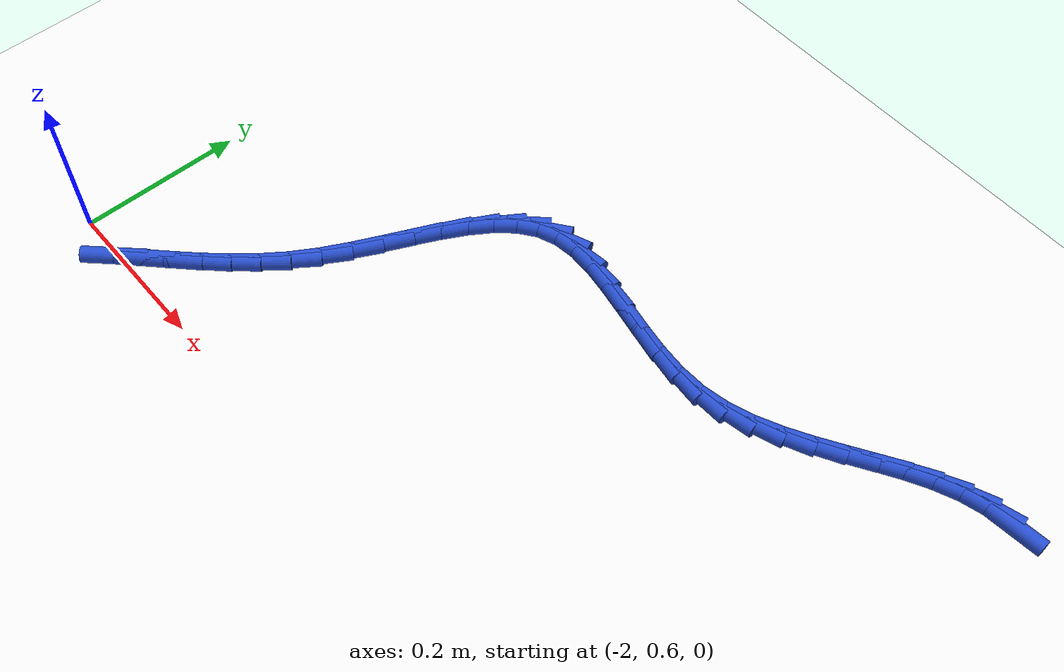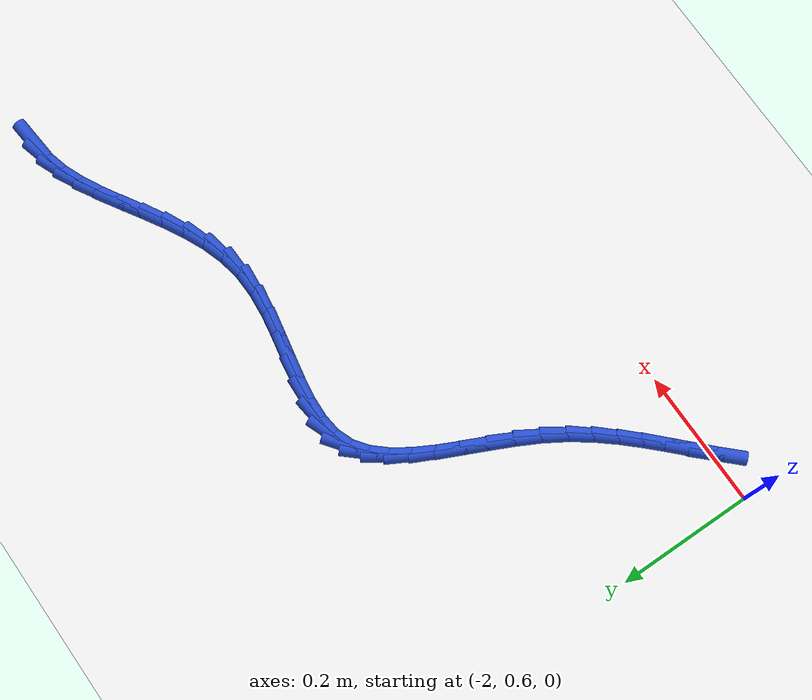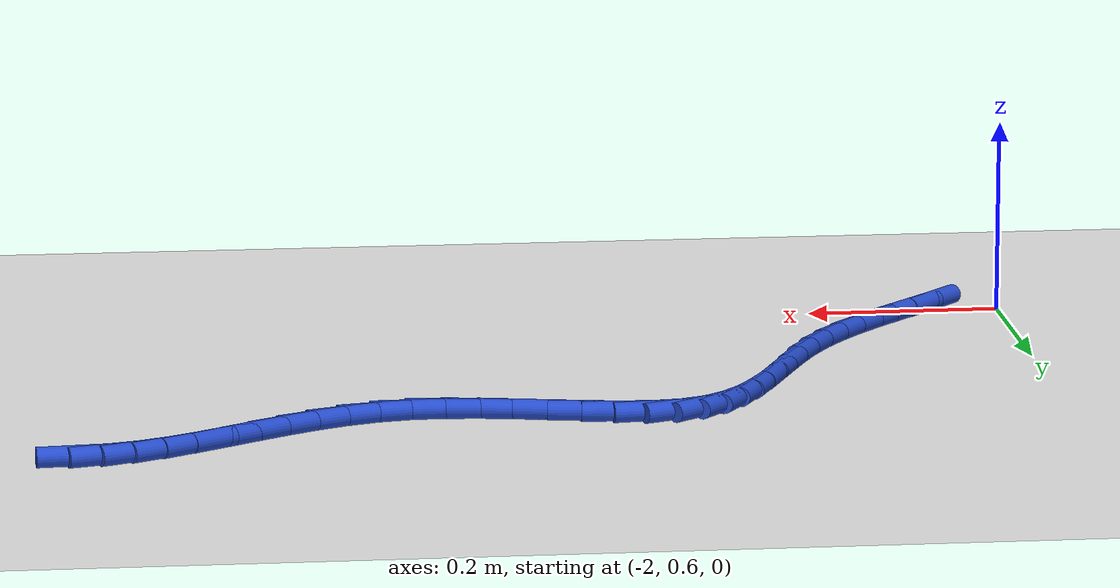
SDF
<sdf version="1.6">
 <world name="default">
  <model name="ground_plane">
   <static>1</static>
   <link name="link">
    <collision name="collision">
     <geometry><plane><normal>0 0 1</normal><size>100 100</size></plane></geometry>
     <surface><friction><ode><mu>100</mu><mu2>50</mu2></ode></friction></surface>
    </collision>
    <visual name="visual">
     <cast_shadows>0</cast_shadows>
     <geometry><plane><normal>0 0 1</normal><size>100 100</size></plane></geometry>
     <material>
      <script><uri>file://media/materials/scripts/gazebo.material</uri><name>Gazebo/WhiteGlow</name></script>
     </material>
    </visual>
   </link>
  </model>
  <model name="line">
   <link name="link_52">
    <pose>-1.0259777532652572 1.1201565455680154 0.01 0 1.57 0.08611893550251531</pose>
    <collision name="collision">
     <geometry><cylinder><radius>0.01</radius><length>0.08</length></cylinder></geometry>
    </collision>
    <visual name="visual">
     <material>
      <script><name>Gazebo/Blue</name><uri>file://media/materials/scripts/gazebo.material</uri></script>
     </material>
     <geometry><cylinder><radius>0.01</radius><length>0.08</length></cylinder></geometry>
    </visual>
   </link>
   <link name="link_53">
    <pose>-1.0549552922446777 1.1176548430962816 0.01 0 1.57 0.26071290076999276</pose>
    <collision name="collision">
     <geometry><cylinder><radius>0.01</radius><length>0.08</length></cylinder></geometry>
    </collision>
    <visual name="visual">
     <material>
      <script><name>Gazebo/Blue</name><uri>file://media/materials/scripts/gazebo.material</uri></script>
     </material>
     <geometry><cylinder><radius>0.01</radius><length>0.08</length></cylinder></geometry>
    </visual>
   </link>
   <link name="link_54">
    <pose>-1.083548175945985 1.1100266895430082 0.01 0 1.57 0.3939593451245669</pose>
    <collision name="collision">
     <geometry><cylinder><radius>0.01</radius><length>0.08</length></cylinder></geometry>
    </collision>
    <visual name="visual">
     <material>
      <script><name>Gazebo/Blue</name><uri>file://media/materials/scripts/gazebo.material</uri></script>
     </material>
     <geometry><cylinder><radius>0.01</radius><length>0.08</length></cylinder></geometry>
    </visual>
   </link>
   <link name="link_55">
    <pose>-1.111916370697673 1.0982342912697711 0.01 0 1.57 0.4836126055615789</pose>
    <collision name="collision">
     <geometry><cylinder><radius>0.01</radius><length>0.08</length></cylinder></geometry>
    </collision>
    <visual name="visual">
     <material>
      <script><name>Gazebo/Blue</name><uri>file://media/materials/scripts/gazebo.material</uri></script>
     </material>
     <geometry><cylinder><radius>0.01</radius><length>0.08</length></cylinder></geometry>
    </visual>
   </link>
   <link name="link_56">
    <pose>-1.140232149649637 1.083362525131302 0.01 0 1.57 0.5353586523979912</pose>
    <collision name="collision">
     <geometry><cylinder><radius>0.01</radius><length>0.08</length></cylinder></geometry>
    </collision>
    <visual name="visual">
     <material>
      <script><name>Gazebo/Blue</name><uri>file://media/materials/scripts/gazebo.material</uri></script>
     </material>
     <geometry><cylinder><radius>0.01</radius><length>0.08</length></cylinder></geometry>
    </visual>
   </link>
   <link name="link_57">
    <pose>-1.1686677859517722 1.0664962679823315 0.01 0 1.57 0.5541065408203324</pose>
    <collision name="collision">
     <geometry><cylinder><radius>0.01</radius><length>0.08</length></cylinder></geometry>
    </collision>
    <visual name="visual">
     <material>
      <script><name>Gazebo/Blue</name><uri>file://media/materials/scripts/gazebo.material</uri></script>
     </material>
     <geometry><cylinder><radius>0.01</radius><length>0.08</length></cylinder></geometry>
    </visual>
   </link>
   <link name="link_58">
    <pose>-1.1973955527539744 1.0487203966775922 0.01 0 1.57 0.5425654313970443</pose>
    <collision name="collision">
     <geometry><cylinder><radius>0.01</radius><length>0.08</length></cylinder></geometry>
    </collision>
    <visual name="visual">
     <material>
      <script><name>Gazebo/Blue</name><uri>file://media/materials/scripts/gazebo.material</uri></script>
     </material>
     <geometry><cylinder><radius>0.01</radius><length>0.08</length></cylinder></geometry>
    </visual>
   </link>
   <link name="link_59">
    <pose>-1.2265877232061388 1.0311197880718144 0.01 0 1.57 0.501158423794729</pose>
    <collision name="collision">
     <geometry><cylinder><radius>0.01</radius><length>0.08</length></cylinder></geometry>
    </collision>
    <visual name="visual">
     <material>
      <script><name>Gazebo/Blue</name><uri>file://media/materials/scripts/gazebo.material</uri></script>
     </material>
     <geometry><cylinder><radius>0.01</radius><length>0.08</length></cylinder></geometry>
    </visual>
   </link>
   <link name="link_60">
    <pose>-1.2564165704581611 1.0147793190197296 0.01 0 1.57 0.4284972848036005</pose>
    <collision name="collision">
     <geometry><cylinder><radius>0.01</radius><length>0.08</length></cylinder></geometry>
    </collision>
    <visual name="visual">
     <material>
      <script><name>Gazebo/Blue</name><uri>file://media/materials/scripts/gazebo.material</uri></script>
     </material>
     <geometry><cylinder><radius>0.01</radius><length>0.08</length></cylinder></geometry>
    </visual>
   </link>
   <link name="link_61">
    <pose>-1.2870543676599366 1.00078386637607 0.01 0 1.57 0.3224871878234295</pose>
    <collision name="collision">
     <geometry><cylinder><radius>0.01</radius><length>0.08</length></cylinder></geometry>
    </collision>
    <visual name="visual">
     <material>
      <script><name>Gazebo/Blue</name><uri>file://media/materials/scripts/gazebo.material</uri></script>
     </material>
     <geometry><cylinder><radius>0.01</radius><length>0.08</length></cylinder></geometry>
    </visual>
   </link>
   <link name="link_62">
    <pose>-1.3186733879613601 0.9902183069955662 0.01 0 1.57 0.1825742327631853</pose>
    <collision name="collision">
     <geometry><cylinder><radius>0.01</radius><length>0.08</length></cylinder></geometry>
    </collision>
    <visual name="visual">
     <material>
      <script><name>Gazebo/Blue</name><uri>file://media/materials/scripts/gazebo.material</uri></script>
     </material>
     <geometry><cylinder><radius>0.01</radius><length>0.08</length></cylinder></geometry>
    </visual>
   </link>
   <link name="link_63">
    <pose>-1.3514459021469807 0.9841675093646113 0.01 0 1.57 0.02684532839024324</pose>
    <collision name="collision">
     <geometry><cylinder><radius>0.01</radius><length>0.08</length></cylinder></geometry>
    </collision>
    <visual name="visual">
     <material>
      <script><name>Gazebo/Blue</name><uri>file://media/materials/scripts/gazebo.material</uri></script>
     </material>
     <geometry><cylinder><radius>0.01</radius><length>0.08</length></cylinder></geometry>
    </visual>
   </link>
   <link name="link_64">
    <pose>-1.3854138960708653 0.983255408293976 0.01 0 1.57 -0.09046818717673741</pose>
    <collision name="collision">
     <geometry><cylinder><radius>0.01</radius><length>0.08</length></cylinder></geometry>
    </collision>
    <visual name="visual">
     <material>
      <script><name>Gazebo/Blue</name><uri>file://media/materials/scripts/gazebo.material</uri></script>
     </material>
     <geometry><cylinder><radius>0.01</radius><length>0.08</length></cylinder></geometry>
    </visual>
   </link>
   <link name="link_65">
    <pose>-1.420138718775987 0.9864054987111578 0.01 0 1.57 -0.16296738304080768</pose>
    <collision name="collision">
     <geometry><cylinder><radius>0.01</radius><length>0.08</length></cylinder></geometry>
    </collision>
    <visual name="visual">
     <material>
      <script><name>Gazebo/Blue</name><uri>file://media/materials/scripts/gazebo.material</uri></script>
     </material>
     <geometry><cylinder><radius>0.01</radius><length>0.08</length></cylinder></geometry>
    </visual>
   </link>
   <link name="link_66">
    <pose>-1.4550709101351507 0.9921492449541518 0.01 0 1.57 -0.19602881218156004</pose>
    <collision name="collision">
     <geometry><cylinder><radius>0.01</radius><length>0.08</length></cylinder></geometry>
    </collision>
    <visual name="visual">
     <material>
      <script><name>Gazebo/Blue</name><uri>file://media/materials/scripts/gazebo.material</uri></script>
     </material>
     <geometry><cylinder><radius>0.01</radius><length>0.08</length></cylinder></geometry>
    </visual>
   </link>
   <link name="link_67">
    <pose>-1.4896610100211571 0.9990181113609515 0.01 0 1.57 -0.19127459408507944</pose>
    <collision name="collision">
     <geometry><cylinder><radius>0.01</radius><length>0.08</length></cylinder></geometry>
    </collision>
    <visual name="visual">
     <material>
      <script><name>Gazebo/Blue</name><uri>file://media/materials/scripts/gazebo.material</uri></script>
     </material>
     <geometry><cylinder><radius>0.01</radius><length>0.08</length></cylinder></geometry>
    </visual>
   </link>
   <link name="link_68">
    <pose>-1.52335955830681 1.0055435622695512 0.01 0 1.57 -0.14509404896703468</pose>
    <collision name="collision">
     <geometry><cylinder><radius>0.01</radius><length>0.08</length></cylinder></geometry>
    </collision>
    <visual name="visual">
     <material>
      <script><name>Gazebo/Blue</name><uri>file://media/materials/scripts/gazebo.material</uri></script>
     </material>
     <geometry><cylinder><radius>0.01</radius><length>0.08</length></cylinder></geometry>
    </visual>
   </link>
   <link name="link_69">
    <pose>-1.5556170948649124 1.010257062017945 0.01 0 1.57 -0.04731029014906379</pose>
    <collision name="collision">
     <geometry><cylinder><radius>0.01</radius><length>0.08</length></cylinder></geometry>
    </collision>
    <visual name="visual">
     <material>
      <script><name>Gazebo/Blue</name><uri>file://media/materials/scripts/gazebo.material</uri></script>
     </material>
     <geometry><cylinder><radius>0.01</radius><length>0.08</length></cylinder></geometry>
    </visual>
   </link>
   <link name="link_70">
    <pose>-1.5858841595682664 1.0116900749441267 0.01 0 1.57 0.11902905592434371</pose>
    <collision name="collision">
     <geometry><cylinder><radius>0.01</radius><length>0.08</length></cylinder></geometry>
    </collision>
    <visual name="visual">
     <material>
      <script><name>Gazebo/Blue</name><uri>file://media/materials/scripts/gazebo.material</uri></script>
     </material>
     <geometry><cylinder><radius>0.01</radius><length>0.08</length></cylinder></geometry>
    </visual>
   </link>
   <link name="link_71">
    <pose>-1.6136112922896761 1.0083740653860909 0.01 0 1.57 0.3674107815482375</pose>
    <collision name="collision">
     <geometry><cylinder><radius>0.01</radius><length>0.08</length></cylinder></geometry>
    </collision>
    <visual name="visual">
     <material>
      <script><name>Gazebo/Blue</name><uri>file://media/materials/scripts/gazebo.material</uri></script>
     </material>
     <geometry><cylinder><radius>0.01</radius><length>0.08</length></cylinder></geometry>
    </visual>
   </link>
   <link name="link_72">
    <pose>-1.6382690138259495 0.9988836188424973 0.01 0 1.57 0.6358802959516996</pose>
    <collision name="collision">
     <geometry><cylinder><radius>0.01</radius><length>0.08</length></cylinder></geometry>
    </collision>
    <visual name="visual">
     <material>
      <script><name>Gazebo/Blue</name><uri>file://media/materials/scripts/gazebo.material</uri></script>
     </material>
     <geometry><cylinder><radius>0.01</radius><length>0.08</length></cylinder></geometry>
    </visual>
   </link>
   <link name="link_73">
    <pose>-1.6598614656077455 0.9829449362768021 0.01 0 1.57 0.8421692727875335</pose>
    <collision name="collision">
     <geometry><cylinder><radius>0.01</radius><length>0.08</length></cylinder></geometry>
    </collision>
    <visual name="visual">
     <material>
      <script><name>Gazebo/Blue</name><uri>file://media/materials/scripts/gazebo.material</uri></script>
     </material>
     <geometry><cylinder><radius>0.01</radius><length>0.08</length></cylinder></geometry>
    </visual>
   </link>
   <link name="link_74">
    <pose>-1.6789711164593724 0.961532316510751 0.01 0 1.57 0.9826582650933804</pose>
    <collision name="collision">
     <geometry><cylinder><radius>0.01</radius><length>0.08</length></cylinder></geometry>
    </collision>
    <visual name="visual">
     <material>
      <script><name>Gazebo/Blue</name><uri>file://media/materials/scripts/gazebo.material</uri></script>
     </material>
     <geometry><cylinder><radius>0.01</radius><length>0.08</length></cylinder></geometry>
    </visual>
   </link>
   <link name="link_75">
    <pose>-1.6962093756284415 0.9356825151695124 0.01 0 1.57 1.070827798326646</pose>
    <collision name="collision">
     <geometry><cylinder><radius>0.01</radius><length>0.08</length></cylinder></geometry>
    </collision>
    <visual name="visual">
     <material>
      <script><name>Gazebo/Blue</name><uri>file://media/materials/scripts/gazebo.material</uri></script>
     </material>
     <geometry><cylinder><radius>0.01</radius><length>0.08</length></cylinder></geometry>
    </visual>
   </link>
   <link name="link_76">
    <pose>-1.712187652362564 0.906432287878255 0.01 0 1.57 1.1192983352306827</pose>
    <collision name="collision">
     <geometry><cylinder><radius>0.01</radius><length>0.08</length></cylinder></geometry>
    </collision>
    <visual name="visual">
     <material>
      <script><name>Gazebo/Blue</name><uri>file://media/materials/scripts/gazebo.material</uri></script>
     </material>
     <geometry><cylinder><radius>0.01</radius><length>0.08</length></cylinder></geometry>
    </visual>
   </link>
   <link name="link_77">
    <pose>-1.7275173559093489 0.8748183902621482 0.01 0 1.57 1.1361612998513244</pose>
    <collision name="collision">
     <geometry><cylinder><radius>0.01</radius><length>0.08</length></cylinder></geometry>
    </collision>
    <visual name="visual">
     <material>
      <script><name>Gazebo/Blue</name><uri>file://media/materials/scripts/gazebo.material</uri></script>
     </material>
     <geometry><cylinder><radius>0.01</radius><length>0.08</length></cylinder></geometry>
    </visual>
   </link>
   <link name="link_78">
    <pose>-1.7428098955164075 0.8418775779463604 0.01 0 1.57 1.1253347935233187</pose>
    <collision name="collision">
     <geometry><cylinder><radius>0.01</radius><length>0.08</length></cylinder></geometry>
    </collision>
    <visual name="visual">
     <material>
      <script><name>Gazebo/Blue</name><uri>file://media/materials/scripts/gazebo.material</uri></script>
     </material>
     <geometry><cylinder><radius>0.01</radius><length>0.08</length></cylinder></geometry>
    </visual>
   </link>
   <link name="link_79">
    <pose>-1.7586766804313507 0.8086466065560602 0.01 0 1.57 1.0873941480818492</pose>
    <collision name="collision">
     <geometry><cylinder><radius>0.01</radius><length>0.08</length></cylinder></geometry>
    </collision>
    <visual name="visual">
     <material>
      <script><name>Gazebo/Blue</name><uri>file://media/materials/scripts/gazebo.material</uri></script>
     </material>
     <geometry><cylinder><radius>0.01</radius><length>0.08</length></cylinder></geometry>
    </visual>
   </link>
   <link name="link_80">
    <pose>-1.7757291199017877 0.776162231716417 0.01 0 1.57 1.020700433707842</pose>
    <collision name="collision">
     <geometry><cylinder><radius>0.01</radius><length>0.08</length></cylinder></geometry>
    </collision>
    <visual name="visual">
     <material>
      <script><name>Gazebo/Blue</name><uri>file://media/materials/scripts/gazebo.material</uri></script>
     </material>
     <geometry><cylinder><radius>0.01</radius><length>0.08</length></cylinder></geometry>
    </visual>
   </link>
   <link name="link_81">
    <pose>-1.7945660336214473 0.7454450558118114 0.01 0 1.57 0.9417394753219249</pose>
    <collision name="collision">
     <geometry><cylinder><radius>0.01</radius><length>0.08</length></cylinder></geometry>
    </collision>
    <visual name="visual">
     <material>
      <script><name>Gazebo/Blue</name><uri>file://media/materials/scripts/gazebo.material</uri></script>
     </material>
     <geometry><cylinder><radius>0.01</radius><length>0.08</length></cylinder></geometry>
    </visual>
   </link>
   <link name="link_82">
    <pose>-1.8153224520290088 0.7169206085512071 0.01 0 1.57 0.8759331769046607</pose>
    <collision name="collision">
     <geometry><cylinder><radius>0.01</radius><length>0.08</length></cylinder></geometry>
    </collision>
    <visual name="visual">
     <material>
      <script><name>Gazebo/Blue</name><uri>file://media/materials/scripts/gazebo.material</uri></script>
     </material>
     <geometry><cylinder><radius>0.01</radius><length>0.08</length></cylinder></geometry>
    </visual>
   </link>
   <link name="link_83">
    <pose>-1.8375453484429471 0.6902599029746055 0.01 0 1.57 0.8262265913954441</pose>
    <collision name="collision">
     <geometry><cylinder><radius>0.01</radius><length>0.08</length></cylinder></geometry>
    </collision>
    <visual name="visual">
     <material>
      <script><name>Gazebo/Blue</name><uri>file://media/materials/scripts/gazebo.material</uri></script>
     </material>
     <geometry><cylinder><radius>0.01</radius><length>0.08</length></cylinder></geometry>
    </visual>
   </link>
   <link name="link_84">
    <pose>-1.8607438131591152 0.6650853456668587 0.01 0 1.57 0.7934165496593453</pose>
    <collision name="collision">
     <geometry><cylinder><radius>0.01</radius><length>0.08</length></cylinder></geometry>
    </collision>
    <visual name="visual">
     <material>
      <script><name>Gazebo/Blue</name><uri>file://media/materials/scripts/gazebo.material</uri></script>
     </material>
     <geometry><cylinder><radius>0.01</radius><length>0.08</length></cylinder></geometry>
    </visual>
   </link>
   <link name="link_85">
    <pose>-1.8844269364733663 0.6410193432128177 0.01 0 1.57 0.7781271304767212</pose>
    <collision name="collision">
     <geometry><cylinder><radius>0.01</radius><length>0.08</length></cylinder></geometry>
    </collision>
    <visual name="visual">
     <material>
      <script><name>Gazebo/Blue</name><uri>file://media/materials/scripts/gazebo.material</uri></script>
     </material>
     <geometry><cylinder><radius>0.01</radius><length>0.08</length></cylinder></geometry>
    </visual>
   </link>
   <link name="link_86">
    <pose>-1.9081038086815538 0.6176843021973352 0.01 0 1.57 0.781108058290066</pose>
    <collision name="collision">
     <geometry><cylinder><radius>0.01</radius><length>0.08</length></cylinder></geometry>
    </collision>
    <visual name="visual">
     <material>
      <script><name>Gazebo/Blue</name><uri>file://media/materials/scripts/gazebo.material</uri></script>
     </material>
     <geometry><cylinder><radius>0.01</radius><length>0.08</length></cylinder></geometry>
    </visual>
   </link>
   <link name="link_87">
    <pose>-1.93128352007953 0.5947026292052618 0.01 0 1.57 0.80341174198927</pose>
    <collision name="collision">
     <geometry><cylinder><radius>0.01</radius><length>0.08</length></cylinder></geometry>
    </collision>
    <visual name="visual">
     <material>
      <script><name>Gazebo/Blue</name><uri>file://media/materials/scripts/gazebo.material</uri></script>
     </material>
     <geometry><cylinder><radius>0.01</radius><length>0.08</length></cylinder></geometry>
    </visual>
   </link>
  </model>
 </world>
</sdf>
